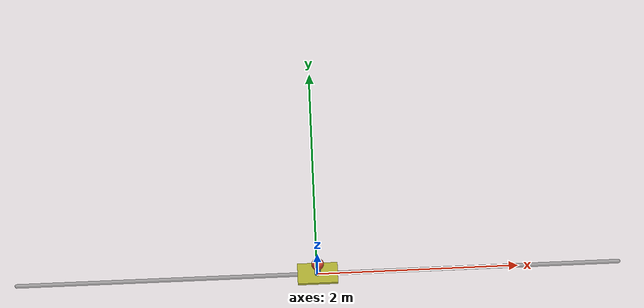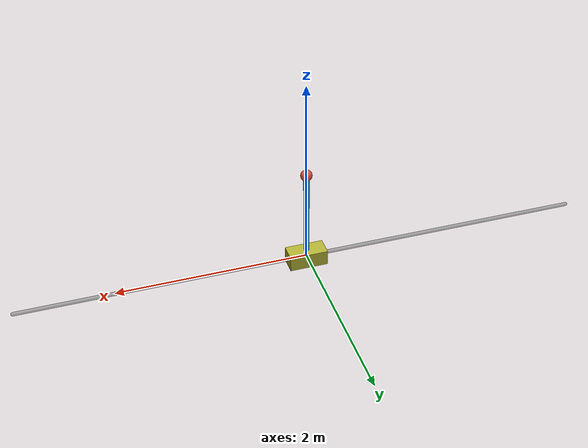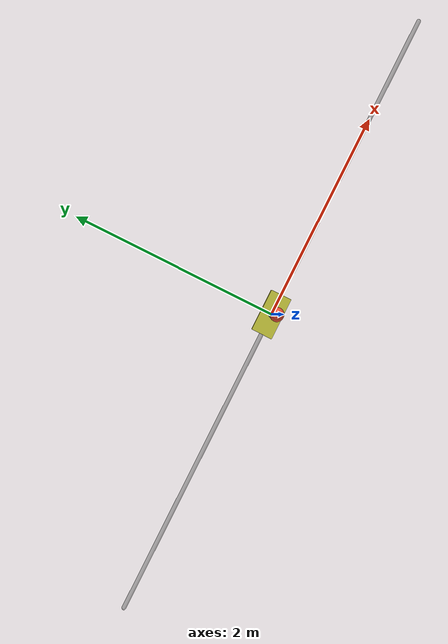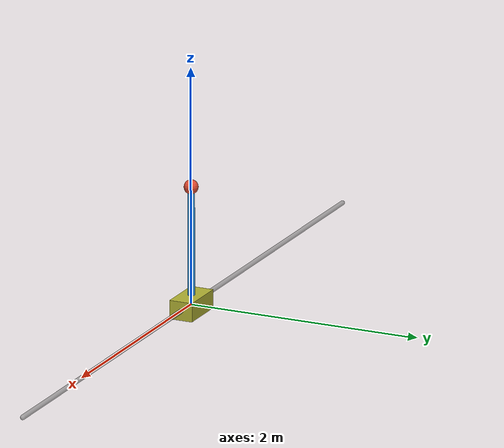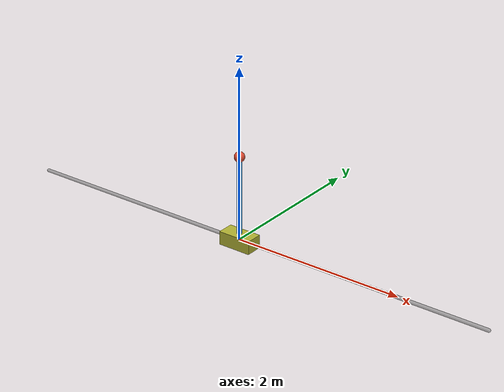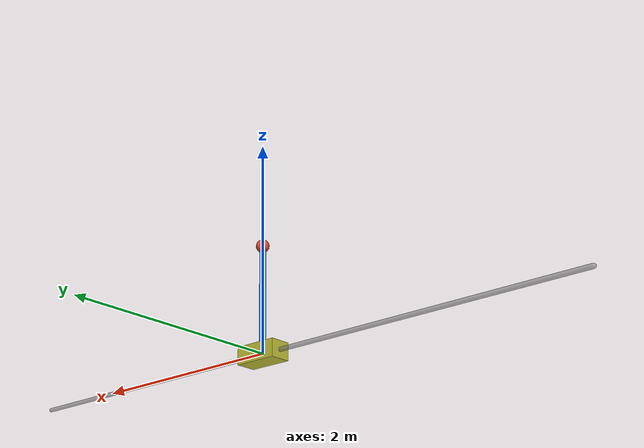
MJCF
<mujoco model="control-design">
  <compiler angle="radian"/>
  <option gravity="0 0 -9.81" timestep="0.002"/>

  <default>
    <geom contype="0" conaffinity="0"/>
  </default>

  <worldbody>
    <geom name="rail" type="capsule" fromto="-3 0 0 3 0 0"
          size="0.02" rgba="0.5 0.5 0.5 0.6"/>

    <body name="cart" pos="0 0 0">
      <joint name="slider" type="slide" axis="1 0 0" damping="1.0"/>
      <geom name="cart_geom" type="box" size="0.2 0.1 0.08"
            mass="1.0" rgba="0.7 0.7 0.2 1"/>

      <body name="pole" pos="0 0 0">
        <joint name="hinge" type="hinge" axis="0 1 0"/>
        <inertial pos="0 0 0.5" mass="0.5" diaginertia="0.05 0.05 0.001"/>
        <geom name="pole_geom" type="capsule"
              fromto="0 0 0 0 0 1.0" size="0.03"
              rgba="0.2 0.6 0.9 1"/>
        <geom name="tip" type="sphere" size="0.06"
              pos="0 0 1.0" rgba="0.9 0.3 0.2 1"/>
      </body>
    </body>
  </worldbody>

  <actuator>
    <motor name="cart_force" joint="slider" gear="1"/>
  </actuator>
</mujoco>
